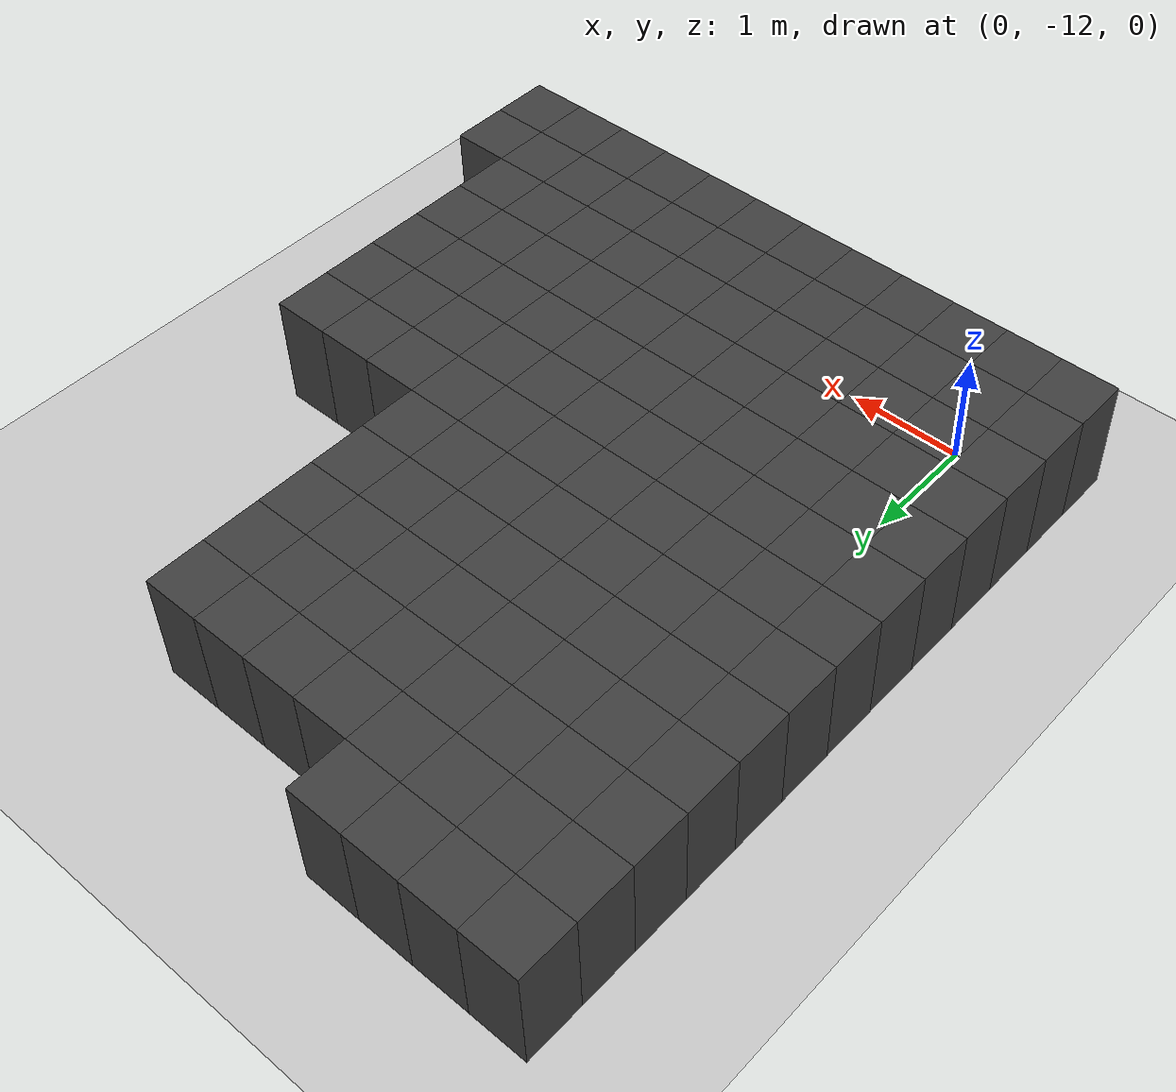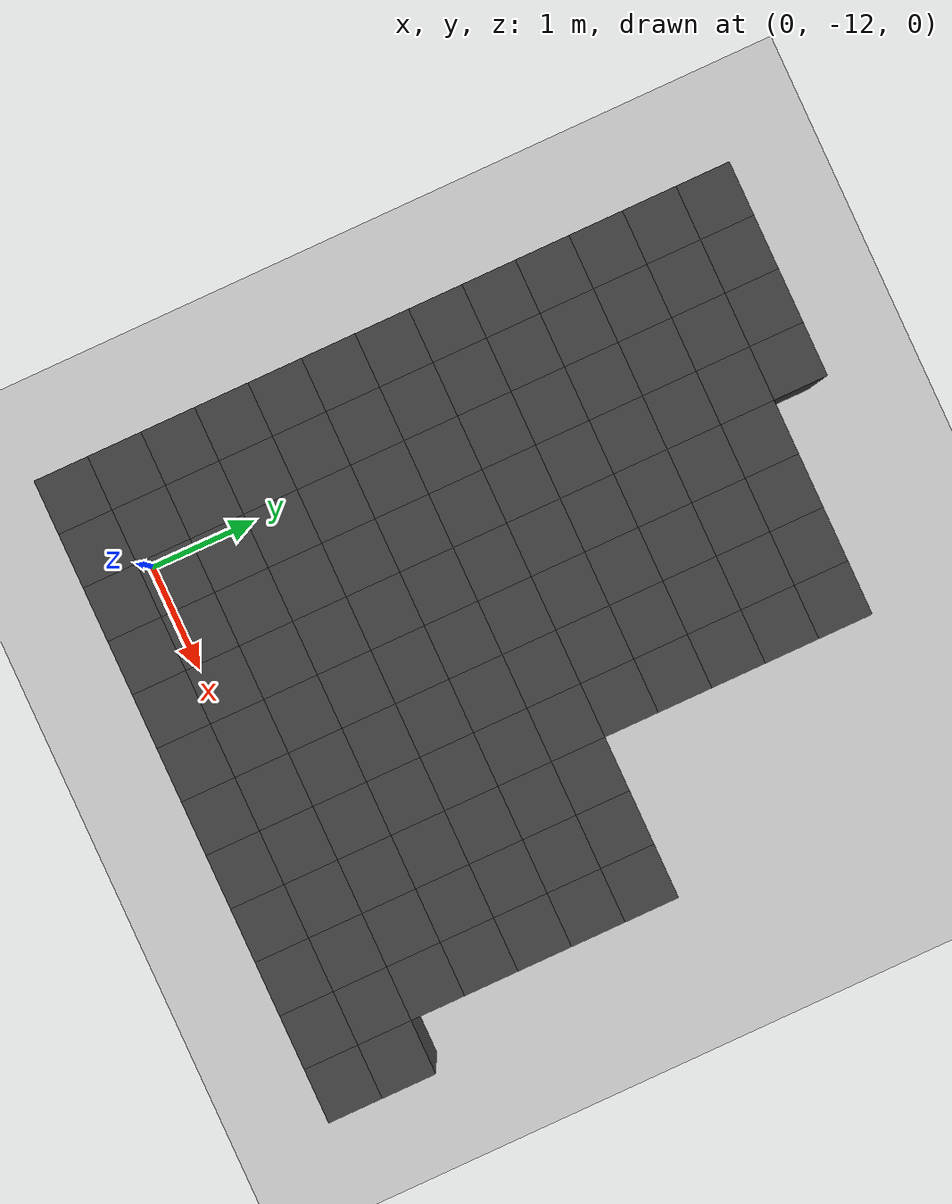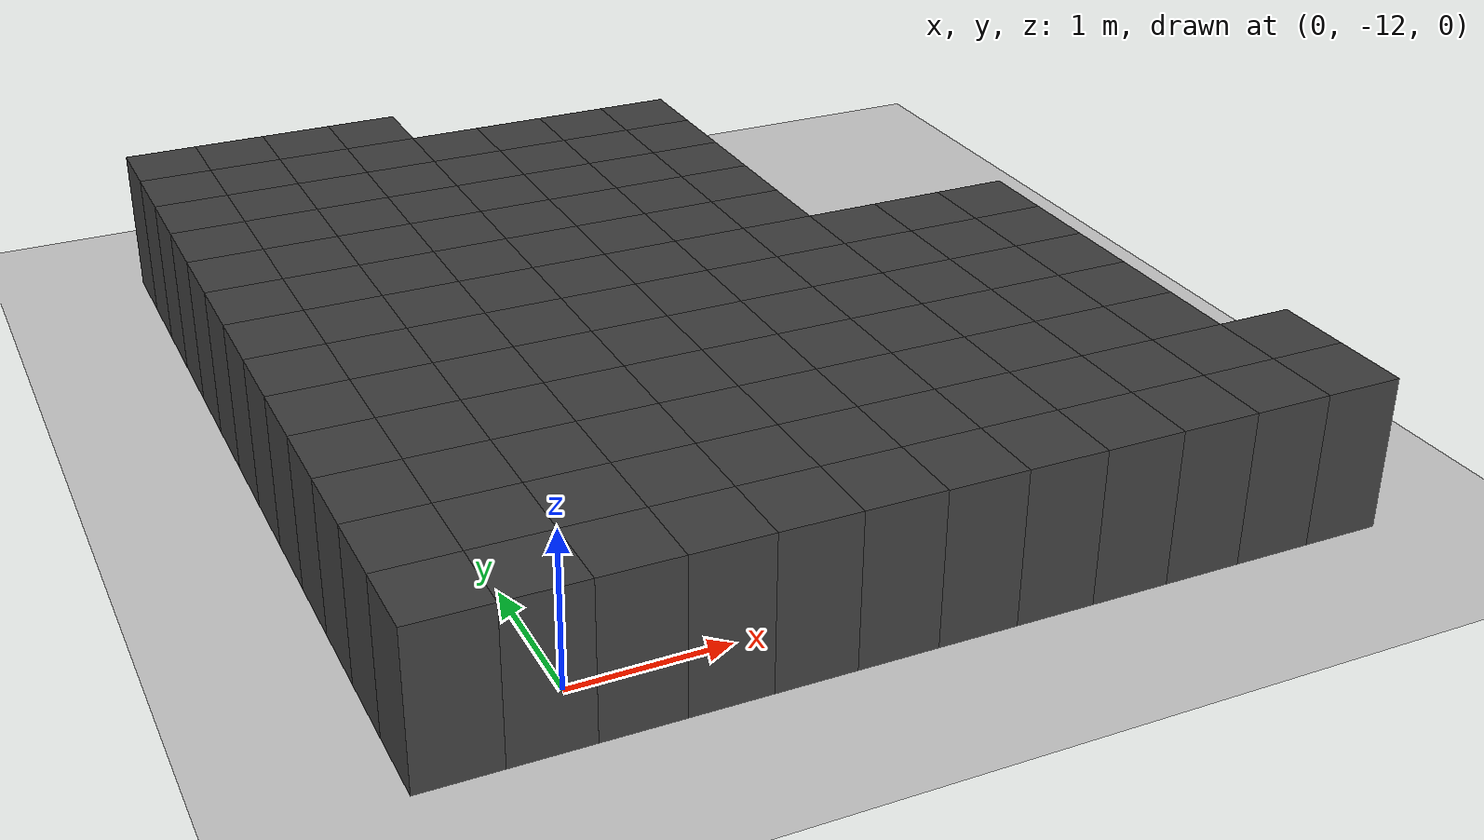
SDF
<sdf version="1.7">
 <world name="map_13364">
  <model name="ground_plane">
   <static>true</static>
   <link name="link">
    <collision name="collision">
     <geometry><plane><normal>0 0 1</normal><size>200 200</size></plane></geometry>
    </collision>
    <visual name="visual">
     <geometry><plane><normal>0 0 1</normal><size>200 200</size></plane></geometry>
     <material><ambient>0.8 0.8 0.8 1</ambient><diffuse>0.8 0.8 0.8 1</diffuse></material>
    </visual>
   </link>
  </model>
  <model name="maze_environment">
   <static>true</static>
   <link name="wall_1348">
    <pose>-0.750 -6.250 0.500 0 0 0</pose>
    <collision name="col"><geometry><box><size>0.5 0.5 1.0</size></box></geometry></collision>
    <visual name="vis">
     <geometry><box><size>0.5 0.5 1.0</size></box></geometry>
     <material><ambient>0.15 0.15 0.15 1</ambient><diffuse>0.25 0.25 0.25 1</diffuse></material>
    </visual>
   </link>
   <link name="wall_1349">
    <pose>-0.250 -6.250 0.500 0 0 0</pose>
    <collision name="col"><geometry><box><size>0.5 0.5 1.0</size></box></geometry></collision>
    <visual name="vis">
     <geometry><box><size>0.5 0.5 1.0</size></box></geometry>
     <material><ambient>0.15 0.15 0.15 1</ambient><diffuse>0.25 0.25 0.25 1</diffuse></material>
    </visual>
   </link>
   <link name="wall_1350">
    <pose>0.250 -6.250 0.500 0 0 0</pose>
    <collision name="col"><geometry><box><size>0.5 0.5 1.0</size></box></geometry></collision>
    <visual name="vis">
     <geometry><box><size>0.5 0.5 1.0</size></box></geometry>
     <material><ambient>0.15 0.15 0.15 1</ambient><diffuse>0.25 0.25 0.25 1</diffuse></material>
    </visual>
   </link>
   <link name="wall_1351">
    <pose>0.750 -6.250 0.500 0 0 0</pose>
    <collision name="col"><geometry><box><size>0.5 0.5 1.0</size></box></geometry></collision>
    <visual name="vis">
     <geometry><box><size>0.5 0.5 1.0</size></box></geometry>
     <material><ambient>0.15 0.15 0.15 1</ambient><diffuse>0.25 0.25 0.25 1</diffuse></material>
    </visual>
   </link>
   <link name="wall_1385">
    <pose>-0.750 -6.750 0.500 0 0 0</pose>
    <collision name="col"><geometry><box><size>0.5 0.5 1.0</size></box></geometry></collision>
    <visual name="vis">
     <geometry><box><size>0.5 0.5 1.0</size></box></geometry>
     <material><ambient>0.15 0.15 0.15 1</ambient><diffuse>0.25 0.25 0.25 1</diffuse></material>
    </visual>
   </link>
   <link name="wall_1386">
    <pose>-0.250 -6.750 0.500 0 0 0</pose>
    <collision name="col"><geometry><box><size>0.5 0.5 1.0</size></box></geometry></collision>
    <visual name="vis">
     <geometry><box><size>0.5 0.5 1.0</size></box></geometry>
     <material><ambient>0.15 0.15 0.15 1</ambient><diffuse>0.25 0.25 0.25 1</diffuse></material>
    </visual>
   </link>
   <link name="wall_1387">
    <pose>0.250 -6.750 0.500 0 0 0</pose>
    <collision name="col"><geometry><box><size>0.5 0.5 1.0</size></box></geometry></collision>
    <visual name="vis">
     <geometry><box><size>0.5 0.5 1.0</size></box></geometry>
     <material><ambient>0.15 0.15 0.15 1</ambient><diffuse>0.25 0.25 0.25 1</diffuse></material>
    </visual>
   </link>
   <link name="wall_1388">
    <pose>0.750 -6.750 0.500 0 0 0</pose>
    <collision name="col"><geometry><box><size>0.5 0.5 1.0</size></box></geometry></collision>
    <visual name="vis">
     <geometry><box><size>0.5 0.5 1.0</size></box></geometry>
     <material><ambient>0.15 0.15 0.15 1</ambient><diffuse>0.25 0.25 0.25 1</diffuse></material>
    </visual>
   </link>
   <link name="wall_1389">
    <pose>1.250 -6.750 0.500 0 0 0</pose>
    <collision name="col"><geometry><box><size>0.5 0.5 1.0</size></box></geometry></collision>
    <visual name="vis">
     <geometry><box><size>0.5 0.5 1.0</size></box></geometry>
     <material><ambient>0.15 0.15 0.15 1</ambient><diffuse>0.25 0.25 0.25 1</diffuse></material>
    </visual>
   </link>
   <link name="wall_1390">
    <pose>1.750 -6.750 0.500 0 0 0</pose>
    <collision name="col"><geometry><box><size>0.5 0.5 1.0</size></box></geometry></collision>
    <visual name="vis">
     <geometry><box><size>0.5 0.5 1.0</size></box></geometry>
     <material><ambient>0.15 0.15 0.15 1</ambient><diffuse>0.25 0.25 0.25 1</diffuse></material>
    </visual>
   </link>
   <link name="wall_1391">
    <pose>2.250 -6.750 0.500 0 0 0</pose>
    <collision name="col"><geometry><box><size>0.5 0.5 1.0</size></box></geometry></collision>
    <visual name="vis">
     <geometry><box><size>0.5 0.5 1.0</size></box></geometry>
     <material><ambient>0.15 0.15 0.15 1</ambient><diffuse>0.25 0.25 0.25 1</diffuse></material>
    </visual>
   </link>
   <link name="wall_1392">
    <pose>2.750 -6.750 0.500 0 0 0</pose>
    <collision name="col"><geometry><box><size>0.5 0.5 1.0</size></box></geometry></collision>
    <visual name="vis">
     <geometry><box><size>0.5 0.5 1.0</size></box></geometry>
     <material><ambient>0.15 0.15 0.15 1</ambient><diffuse>0.25 0.25 0.25 1</diffuse></material>
    </visual>
   </link>
   <link name="wall_1422">
    <pose>-0.750 -7.250 0.500 0 0 0</pose>
    <collision name="col"><geometry><box><size>0.5 0.5 1.0</size></box></geometry></collision>
    <visual name="vis">
     <geometry><box><size>0.5 0.5 1.0</size></box></geometry>
     <material><ambient>0.15 0.15 0.15 1</ambient><diffuse>0.25 0.25 0.25 1</diffuse></material>
    </visual>
   </link>
   <link name="wall_1423">
    <pose>-0.250 -7.250 0.500 0 0 0</pose>
    <collision name="col"><geometry><box><size>0.5 0.5 1.0</size></box></geometry></collision>
    <visual name="vis">
     <geometry><box><size>0.5 0.5 1.0</size></box></geometry>
     <material><ambient>0.15 0.15 0.15 1</ambient><diffuse>0.25 0.25 0.25 1</diffuse></material>
    </visual>
   </link>
   <link name="wall_1424">
    <pose>0.250 -7.250 0.500 0 0 0</pose>
    <collision name="col"><geometry><box><size>0.5 0.5 1.0</size></box></geometry></collision>
    <visual name="vis">
     <geometry><box><size>0.5 0.5 1.0</size></box></geometry>
     <material><ambient>0.15 0.15 0.15 1</ambient><diffuse>0.25 0.25 0.25 1</diffuse></material>
    </visual>
   </link>
   <link name="wall_1425">
    <pose>0.750 -7.250 0.500 0 0 0</pose>
    <collision name="col"><geometry><box><size>0.5 0.5 1.0</size></box></geometry></collision>
    <visual name="vis">
     <geometry><box><size>0.5 0.5 1.0</size></box></geometry>
     <material><ambient>0.15 0.15 0.15 1</ambient><diffuse>0.25 0.25 0.25 1</diffuse></material>
    </visual>
   </link>
   <link name="wall_1426">
    <pose>1.250 -7.250 0.500 0 0 0</pose>
    <collision name="col"><geometry><box><size>0.5 0.5 1.0</size></box></geometry></collision>
    <visual name="vis">
     <geometry><box><size>0.5 0.5 1.0</size></box></geometry>
     <material><ambient>0.15 0.15 0.15 1</ambient><diffuse>0.25 0.25 0.25 1</diffuse></material>
    </visual>
   </link>
   <link name="wall_1427">
    <pose>1.750 -7.250 0.500 0 0 0</pose>
    <collision name="col"><geometry><box><size>0.5 0.5 1.0</size></box></geometry></collision>
    <visual name="vis">
     <geometry><box><size>0.5 0.5 1.0</size></box></geometry>
     <material><ambient>0.15 0.15 0.15 1</ambient><diffuse>0.25 0.25 0.25 1</diffuse></material>
    </visual>
   </link>
   <link name="wall_1428">
    <pose>2.250 -7.250 0.500 0 0 0</pose>
    <collision name="col"><geometry><box><size>0.5 0.5 1.0</size></box></geometry></collision>
    <visual name="vis">
     <geometry><box><size>0.5 0.5 1.0</size></box></geometry>
     <material><ambient>0.15 0.15 0.15 1</ambient><diffuse>0.25 0.25 0.25 1</diffuse></material>
    </visual>
   </link>
   <link name="wall_1429">
    <pose>2.750 -7.250 0.500 0 0 0</pose>
    <collision name="col"><geometry><box><size>0.5 0.5 1.0</size></box></geometry></collision>
    <visual name="vis">
     <geometry><box><size>0.5 0.5 1.0</size></box></geometry>
     <material><ambient>0.15 0.15 0.15 1</ambient><diffuse>0.25 0.25 0.25 1</diffuse></material>
    </visual>
   </link>
   <link name="wall_1459">
    <pose>-0.750 -7.750 0.500 0 0 0</pose>
    <collision name="col"><geometry><box><size>0.5 0.5 1.0</size></box></geometry></collision>
    <visual name="vis">
     <geometry><box><size>0.5 0.5 1.0</size></box></geometry>
     <material><ambient>0.15 0.15 0.15 1</ambient><diffuse>0.25 0.25 0.25 1</diffuse></material>
    </visual>
   </link>
   <link name="wall_1460">
    <pose>-0.250 -7.750 0.500 0 0 0</pose>
    <collision name="col"><geometry><box><size>0.5 0.5 1.0</size></box></geometry></collision>
    <visual name="vis">
     <geometry><box><size>0.5 0.5 1.0</size></box></geometry>
     <material><ambient>0.15 0.15 0.15 1</ambient><diffuse>0.25 0.25 0.25 1</diffuse></material>
    </visual>
   </link>
   <link name="wall_1461">
    <pose>0.250 -7.750 0.500 0 0 0</pose>
    <collision name="col"><geometry><box><size>0.5 0.5 1.0</size></box></geometry></collision>
    <visual name="vis">
     <geometry><box><size>0.5 0.5 1.0</size></box></geometry>
     <material><ambient>0.15 0.15 0.15 1</ambient><diffuse>0.25 0.25 0.25 1</diffuse></material>
    </visual>
   </link>
   <link name="wall_1462">
    <pose>0.750 -7.750 0.500 0 0 0</pose>
    <collision name="col"><geometry><box><size>0.5 0.5 1.0</size></box></geometry></collision>
    <visual name="vis">
     <geometry><box><size>0.5 0.5 1.0</size></box></geometry>
     <material><ambient>0.15 0.15 0.15 1</ambient><diffuse>0.25 0.25 0.25 1</diffuse></material>
    </visual>
   </link>
   <link name="wall_1463">
    <pose>1.250 -7.750 0.500 0 0 0</pose>
    <collision name="col"><geometry><box><size>0.5 0.5 1.0</size></box></geometry></collision>
    <visual name="vis">
     <geometry><box><size>0.5 0.5 1.0</size></box></geometry>
     <material><ambient>0.15 0.15 0.15 1</ambient><diffuse>0.25 0.25 0.25 1</diffuse></material>
    </visual>
   </link>
   <link name="wall_1464">
    <pose>1.750 -7.750 0.500 0 0 0</pose>
    <collision name="col"><geometry><box><size>0.5 0.5 1.0</size></box></geometry></collision>
    <visual name="vis">
     <geometry><box><size>0.5 0.5 1.0</size></box></geometry>
     <material><ambient>0.15 0.15 0.15 1</ambient><diffuse>0.25 0.25 0.25 1</diffuse></material>
    </visual>
   </link>
   <link name="wall_1465">
    <pose>2.250 -7.750 0.500 0 0 0</pose>
    <collision name="col"><geometry><box><size>0.5 0.5 1.0</size></box></geometry></collision>
    <visual name="vis">
     <geometry><box><size>0.5 0.5 1.0</size></box></geometry>
     <material><ambient>0.15 0.15 0.15 1</ambient><diffuse>0.25 0.25 0.25 1</diffuse></material>
    </visual>
   </link>
   <link name="wall_1466">
    <pose>2.750 -7.750 0.500 0 0 0</pose>
    <collision name="col"><geometry><box><size>0.5 0.5 1.0</size></box></geometry></collision>
    <visual name="vis">
     <geometry><box><size>0.5 0.5 1.0</size></box></geometry>
     <material><ambient>0.15 0.15 0.15 1</ambient><diffuse>0.25 0.25 0.25 1</diffuse></material>
    </visual>
   </link>
   <link name="wall_1496">
    <pose>-0.750 -8.250 0.500 0 0 0</pose>
    <collision name="col"><geometry><box><size>0.5 0.5 1.0</size></box></geometry></collision>
    <visual name="vis">
     <geometry><box><size>0.5 0.5 1.0</size></box></geometry>
     <material><ambient>0.15 0.15 0.15 1</ambient><diffuse>0.25 0.25 0.25 1</diffuse></material>
    </visual>
   </link>
   <link name="wall_1497">
    <pose>-0.250 -8.250 0.500 0 0 0</pose>
    <collision name="col"><geometry><box><size>0.5 0.5 1.0</size></box></geometry></collision>
    <visual name="vis">
     <geometry><box><size>0.5 0.5 1.0</size></box></geometry>
     <material><ambient>0.15 0.15 0.15 1</ambient><diffuse>0.25 0.25 0.25 1</diffuse></material>
    </visual>
   </link>
   <link name="wall_1498">
    <pose>0.250 -8.250 0.500 0 0 0</pose>
    <collision name="col"><geometry><box><size>0.5 0.5 1.0</size></box></geometry></collision>
    <visual name="vis">
     <geometry><box><size>0.5 0.5 1.0</size></box></geometry>
     <material><ambient>0.15 0.15 0.15 1</ambient><diffuse>0.25 0.25 0.25 1</diffuse></material>
    </visual>
   </link>
   <link name="wall_1499">
    <pose>0.750 -8.250 0.500 0 0 0</pose>
    <collision name="col"><geometry><box><size>0.5 0.5 1.0</size></box></geometry></collision>
    <visual name="vis">
     <geometry><box><size>0.5 0.5 1.0</size></box></geometry>
     <material><ambient>0.15 0.15 0.15 1</ambient><diffuse>0.25 0.25 0.25 1</diffuse></material>
    </visual>
   </link>
   <link name="wall_1500">
    <pose>1.250 -8.250 0.500 0 0 0</pose>
    <collision name="col"><geometry><box><size>0.5 0.5 1.0</size></box></geometry></collision>
    <visual name="vis">
     <geometry><box><size>0.5 0.5 1.0</size></box></geometry>
     <material><ambient>0.15 0.15 0.15 1</ambient><diffuse>0.25 0.25 0.25 1</diffuse></material>
    </visual>
   </link>
   <link name="wall_1501">
    <pose>1.750 -8.250 0.500 0 0 0</pose>
    <collision name="col"><geometry><box><size>0.5 0.5 1.0</size></box></geometry></collision>
    <visual name="vis">
     <geometry><box><size>0.5 0.5 1.0</size></box></geometry>
     <material><ambient>0.15 0.15 0.15 1</ambient><diffuse>0.25 0.25 0.25 1</diffuse></material>
    </visual>
   </link>
   <link name="wall_1502">
    <pose>2.250 -8.250 0.500 0 0 0</pose>
    <collision name="col"><geometry><box><size>0.5 0.5 1.0</size></box></geometry></collision>
    <visual name="vis">
     <geometry><box><size>0.5 0.5 1.0</size></box></geometry>
     <material><ambient>0.15 0.15 0.15 1</ambient><diffuse>0.25 0.25 0.25 1</diffuse></material>
    </visual>
   </link>
   <link name="wall_1503">
    <pose>2.750 -8.250 0.500 0 0 0</pose>
    <collision name="col"><geometry><box><size>0.5 0.5 1.0</size></box></geometry></collision>
    <visual name="vis">
     <geometry><box><size>0.5 0.5 1.0</size></box></geometry>
     <material><ambient>0.15 0.15 0.15 1</ambient><diffuse>0.25 0.25 0.25 1</diffuse></material>
    </visual>
   </link>
   <link name="wall_1533">
    <pose>-0.750 -8.750 0.500 0 0 0</pose>
    <collision name="col"><geometry><box><size>0.5 0.5 1.0</size></box></geometry></collision>
    <visual name="vis">
     <geometry><box><size>0.5 0.5 1.0</size></box></geometry>
     <material><ambient>0.15 0.15 0.15 1</ambient><diffuse>0.25 0.25 0.25 1</diffuse></material>
    </visual>
   </link>
   <link name="wall_1534">
    <pose>-0.250 -8.750 0.500 0 0 0</pose>
    <collision name="col"><geometry><box><size>0.5 0.5 1.0</size></box></geometry></collision>
    <visual name="vis">
     <geometry><box><size>0.5 0.5 1.0</size></box></geometry>
     <material><ambient>0.15 0.15 0.15 1</ambient><diffuse>0.25 0.25 0.25 1</diffuse></material>
    </visual>
   </link>
   <link name="wall_1535">
    <pose>0.250 -8.750 0.500 0 0 0</pose>
    <collision name="col"><geometry><box><size>0.5 0.5 1.0</size></box></geometry></collision>
    <visual name="vis">
     <geometry><box><size>0.5 0.5 1.0</size></box></geometry>
     <material><ambient>0.15 0.15 0.15 1</ambient><diffuse>0.25 0.25 0.25 1</diffuse></material>
    </visual>
   </link>
   <link name="wall_1536">
    <pose>0.750 -8.750 0.500 0 0 0</pose>
    <collision name="col"><geometry><box><size>0.5 0.5 1.0</size></box></geometry></collision>
    <visual name="vis">
     <geometry><box><size>0.5 0.5 1.0</size></box></geometry>
     <material><ambient>0.15 0.15 0.15 1</ambient><diffuse>0.25 0.25 0.25 1</diffuse></material>
    </visual>
   </link>
   <link name="wall_1537">
    <pose>1.250 -8.750 0.500 0 0 0</pose>
    <collision name="col"><geometry><box><size>0.5 0.5 1.0</size></box></geometry></collision>
    <visual name="vis">
     <geometry><box><size>0.5 0.5 1.0</size></box></geometry>
     <material><ambient>0.15 0.15 0.15 1</ambient><diffuse>0.25 0.25 0.25 1</diffuse></material>
    </visual>
   </link>
   <link name="wall_1538">
    <pose>1.750 -8.750 0.500 0 0 0</pose>
    <collision name="col"><geometry><box><size>0.5 0.5 1.0</size></box></geometry></collision>
    <visual name="vis">
     <geometry><box><size>0.5 0.5 1.0</size></box></geometry>
     <material><ambient>0.15 0.15 0.15 1</ambient><diffuse>0.25 0.25 0.25 1</diffuse></material>
    </visual>
   </link>
   <link name="wall_1539">
    <pose>2.250 -8.750 0.500 0 0 0</pose>
    <collision name="col"><geometry><box><size>0.5 0.5 1.0</size></box></geometry></collision>
    <visual name="vis">
     <geometry><box><size>0.5 0.5 1.0</size></box></geometry>
     <material><ambient>0.15 0.15 0.15 1</ambient><diffuse>0.25 0.25 0.25 1</diffuse></material>
    </visual>
   </link>
   <link name="wall_1540">
    <pose>2.750 -8.750 0.500 0 0 0</pose>
    <collision name="col"><geometry><box><size>0.5 0.5 1.0</size></box></geometry></collision>
    <visual name="vis">
     <geometry><box><size>0.5 0.5 1.0</size></box></geometry>
     <material><ambient>0.15 0.15 0.15 1</ambient><diffuse>0.25 0.25 0.25 1</diffuse></material>
    </visual>
   </link>
   <link name="wall_1570">
    <pose>-0.750 -9.250 0.500 0 0 0</pose>
    <collision name="col"><geometry><box><size>0.5 0.5 1.0</size></box></geometry></collision>
    <visual name="vis">
     <geometry><box><size>0.5 0.5 1.0</size></box></geometry>
     <material><ambient>0.15 0.15 0.15 1</ambient><diffuse>0.25 0.25 0.25 1</diffuse></material>
    </visual>
   </link>
   <link name="wall_1571">
    <pose>-0.250 -9.250 0.500 0 0 0</pose>
    <collision name="col"><geometry><box><size>0.5 0.5 1.0</size></box></geometry></collision>
    <visual name="vis">
     <geometry><box><size>0.5 0.5 1.0</size></box></geometry>
     <material><ambient>0.15 0.15 0.15 1</ambient><diffuse>0.25 0.25 0.25 1</diffuse></material>
    </visual>
   </link>
   <link name="wall_1572">
    <pose>0.250 -9.250 0.500 0 0 0</pose>
    <collision name="col"><geometry><box><size>0.5 0.5 1.0</size></box></geometry></collision>
    <visual name="vis">
     <geometry><box><size>0.5 0.5 1.0</size></box></geometry>
     <material><ambient>0.15 0.15 0.15 1</ambient><diffuse>0.25 0.25 0.25 1</diffuse></material>
    </visual>
   </link>
   <link name="wall_1573">
    <pose>0.750 -9.250 0.500 0 0 0</pose>
    <collision name="col"><geometry><box><size>0.5 0.5 1.0</size></box></geometry></collision>
    <visual name="vis">
     <geometry><box><size>0.5 0.5 1.0</size></box></geometry>
     <material><ambient>0.15 0.15 0.15 1</ambient><diffuse>0.25 0.25 0.25 1</diffuse></material>
    </visual>
   </link>
   <link name="wall_1574">
    <pose>1.250 -9.250 0.500 0 0 0</pose>
    <collision name="col"><geometry><box><size>0.5 0.5 1.0</size></box></geometry></collision>
    <visual name="vis">
     <geometry><box><size>0.5 0.5 1.0</size></box></geometry>
     <material><ambient>0.15 0.15 0.15 1</ambient><diffuse>0.25 0.25 0.25 1</diffuse></material>
    </visual>
   </link>
   <link name="wall_1575">
    <pose>1.750 -9.250 0.500 0 0 0</pose>
    <collision name="col"><geometry><box><size>0.5 0.5 1.0</size></box></geometry></collision>
    <visual name="vis">
     <geometry><box><size>0.5 0.5 1.0</size></box></geometry>
     <material><ambient>0.15 0.15 0.15 1</ambient><diffuse>0.25 0.25 0.25 1</diffuse></material>
    </visual>
   </link>
   <link name="wall_1576">
    <pose>2.250 -9.250 0.500 0 0 0</pose>
    <collision name="col"><geometry><box><size>0.5 0.5 1.0</size></box></geometry></collision>
    <visual name="vis">
     <geometry><box><size>0.5 0.5 1.0</size></box></geometry>
     <material><ambient>0.15 0.15 0.15 1</ambient><diffuse>0.25 0.25 0.25 1</diffuse></material>
    </visual>
   </link>
   <link name="wall_1577">
    <pose>2.750 -9.250 0.500 0 0 0</pose>
    <collision name="col"><geometry><box><size>0.5 0.5 1.0</size></box></geometry></collision>
    <visual name="vis">
     <geometry><box><size>0.5 0.5 1.0</size></box></geometry>
     <material><ambient>0.15 0.15 0.15 1</ambient><diffuse>0.25 0.25 0.25 1</diffuse></material>
    </visual>
   </link>
   <link name="wall_1578">
    <pose>3.250 -9.250 0.500 0 0 0</pose>
    <collision name="col"><geometry><box><size>0.5 0.5 1.0</size></box></geometry></collision>
    <visual name="vis">
     <geometry><box><size>0.5 0.5 1.0</size></box></geometry>
     <material><ambient>0.15 0.15 0.15 1</ambient><diffuse>0.25 0.25 0.25 1</diffuse></material>
    </visual>
   </link>
   <link name="wall_1579">
    <pose>3.750 -9.250 0.500 0 0 0</pose>
    <collision name="col"><geometry><box><size>0.5 0.5 1.0</size></box></geometry></collision>
    <visual name="vis">
     <geometry><box><size>0.5 0.5 1.0</size></box></geometry>
     <material><ambient>0.15 0.15 0.15 1</ambient><diffuse>0.25 0.25 0.25 1</diffuse></material>
    </visual>
   </link>
   <link name="wall_1580">
    <pose>4.250 -9.250 0.500 0 0 0</pose>
    <collision name="col"><geometry><box><size>0.5 0.5 1.0</size></box></geometry></collision>
    <visual name="vis">
     <geometry><box><size>0.5 0.5 1.0</size></box></geometry>
     <material><ambient>0.15 0.15 0.15 1</ambient><diffuse>0.25 0.25 0.25 1</diffuse></material>
    </visual>
   </link>
   <link name="wall_1613">
    <pose>-0.750 -9.750 0.500 0 0 0</pose>
    <collision name="col"><geometry><box><size>0.5 0.5 1.0</size></box></geometry></collision>
    <visual name="vis">
     <geometry><box><size>0.5 0.5 1.0</size></box></geometry>
     <material><ambient>0.15 0.15 0.15 1</ambient><diffuse>0.25 0.25 0.25 1</diffuse></material>
    </visual>
   </link>
   <link name="wall_1614">
    <pose>-0.250 -9.750 0.500 0 0 0</pose>
    <collision name="col"><geometry><box><size>0.5 0.5 1.0</size></box></geometry></collision>
    <visual name="vis">
     <geometry><box><size>0.5 0.5 1.0</size></box></geometry>
     <material><ambient>0.15 0.15 0.15 1</ambient><diffuse>0.25 0.25 0.25 1</diffuse></material>
    </visual>
   </link>
   <link name="wall_1615">
    <pose>0.250 -9.750 0.500 0 0 0</pose>
    <collision name="col"><geometry><box><size>0.5 0.5 1.0</size></box></geometry></collision>
    <visual name="vis">
     <geometry><box><size>0.5 0.5 1.0</size></box></geometry>
     <material><ambient>0.15 0.15 0.15 1</ambient><diffuse>0.25 0.25 0.25 1</diffuse></material>
    </visual>
   </link>
   <link name="wall_1616">
    <pose>0.750 -9.750 0.500 0 0 0</pose>
    <collision name="col"><geometry><box><size>0.5 0.5 1.0</size></box></geometry></collision>
    <visual name="vis">
     <geometry><box><size>0.5 0.5 1.0</size></box></geometry>
     <material><ambient>0.15 0.15 0.15 1</ambient><diffuse>0.25 0.25 0.25 1</diffuse></material>
    </visual>
   </link>
   <link name="wall_1617">
    <pose>1.250 -9.750 0.500 0 0 0</pose>
    <collision name="col"><geometry><box><size>0.5 0.5 1.0</size></box></geometry></collision>
    <visual name="vis">
     <geometry><box><size>0.5 0.5 1.0</size></box></geometry>
     <material><ambient>0.15 0.15 0.15 1</ambient><diffuse>0.25 0.25 0.25 1</diffuse></material>
    </visual>
   </link>
   <link name="wall_1618">
    <pose>1.750 -9.750 0.500 0 0 0</pose>
    <collision name="col"><geometry><box><size>0.5 0.5 1.0</size></box></geometry></collision>
    <visual name="vis">
     <geometry><box><size>0.5 0.5 1.0</size></box></geometry>
     <material><ambient>0.15 0.15 0.15 1</ambient><diffuse>0.25 0.25 0.25 1</diffuse></material>
    </visual>
   </link>
   <link name="wall_1619">
    <pose>2.250 -9.750 0.500 0 0 0</pose>
    <collision name="col"><geometry><box><size>0.5 0.5 1.0</size></box></geometry></collision>
    <visual name="vis">
     <geometry><box><size>0.5 0.5 1.0</size></box></geometry>
     <material><ambient>0.15 0.15 0.15 1</ambient><diffuse>0.25 0.25 0.25 1</diffuse></material>
    </visual>
   </link>
   <link name="wall_1620">
    <pose>2.750 -9.750 0.500 0 0 0</pose>
    <collision name="col"><geometry><box><size>0.5 0.5 1.0</size></box></geometry></collision>
    <visual name="vis">
     <geometry><box><size>0.5 0.5 1.0</size></box></geometry>
     <material><ambient>0.15 0.15 0.15 1</ambient><diffuse>0.25 0.25 0.25 1</diffuse></material>
    </visual>
   </link>
   <link name="wall_1621">
    <pose>3.250 -9.750 0.500 0 0 0</pose>
    <collision name="col"><geometry><box><size>0.5 0.5 1.0</size></box></geometry></collision>
    <visual name="vis">
     <geometry><box><size>0.5 0.5 1.0</size></box></geometry>
     <material><ambient>0.15 0.15 0.15 1</ambient><diffuse>0.25 0.25 0.25 1</diffuse></material>
    </visual>
   </link>
   <link name="wall_1622">
    <pose>3.750 -9.750 0.500 0 0 0</pose>
    <collision name="col"><geometry><box><size>0.5 0.5 1.0</size></box></geometry></collision>
    <visual name="vis">
     <geometry><box><size>0.5 0.5 1.0</size></box></geometry>
     <material><ambient>0.15 0.15 0.15 1</ambient><diffuse>0.25 0.25 0.25 1</diffuse></material>
    </visual>
   </link>
   <link name="wall_1623">
    <pose>4.250 -9.750 0.500 0 0 0</pose>
    <collision name="col"><geometry><box><size>0.5 0.5 1.0</size></box></geometry></collision>
    <visual name="vis">
     <geometry><box><size>0.5 0.5 1.0</size></box></geometry>
     <material><ambient>0.15 0.15 0.15 1</ambient><diffuse>0.25 0.25 0.25 1</diffuse></material>
    </visual>
   </link>
   <link name="wall_1656">
    <pose>-0.750 -10.250 0.500 0 0 0</pose>
    <collision name="col"><geometry><box><size>0.5 0.5 1.0</size></box></geometry></collision>
    <visual name="vis">
     <geometry><box><size>0.5 0.5 1.0</size></box></geometry>
     <material><ambient>0.15 0.15 0.15 1</ambient><diffuse>0.25 0.25 0.25 1</diffuse></material>
    </visual>
   </link>
   <link name="wall_1657">
    <pose>-0.250 -10.250 0.500 0 0 0</pose>
    <collision name="col"><geometry><box><size>0.5 0.5 1.0</size></box></geometry></collision>
    <visual name="vis">
     <geometry><box><size>0.5 0.5 1.0</size></box></geometry>
     <material><ambient>0.15 0.15 0.15 1</ambient><diffuse>0.25 0.25 0.25 1</diffuse></material>
    </visual>
   </link>
   <link name="wall_1658">
    <pose>0.250 -10.250 0.500 0 0 0</pose>
    <collision name="col"><geometry><box><size>0.5 0.5 1.0</size></box></geometry></collision>
    <visual name="vis">
     <geometry><box><size>0.5 0.5 1.0</size></box></geometry>
     <material><ambient>0.15 0.15 0.15 1</ambient><diffuse>0.25 0.25 0.25 1</diffuse></material>
    </visual>
   </link>
   <link name="wall_1659">
    <pose>0.750 -10.250 0.500 0 0 0</pose>
    <collision name="col"><geometry><box><size>0.5 0.5 1.0</size></box></geometry></collision>
    <visual name="vis">
     <geometry><box><size>0.5 0.5 1.0</size></box></geometry>
     <material><ambient>0.15 0.15 0.15 1</ambient><diffuse>0.25 0.25 0.25 1</diffuse></material>
    </visual>
   </link>
   <link name="wall_1660">
    <pose>1.250 -10.250 0.500 0 0 0</pose>
    <collision name="col"><geometry><box><size>0.5 0.5 1.0</size></box></geometry></collision>
    <visual name="vis">
     <geometry><box><size>0.5 0.5 1.0</size></box></geometry>
     <material><ambient>0.15 0.15 0.15 1</ambient><diffuse>0.25 0.25 0.25 1</diffuse></material>
    </visual>
   </link>
   <link name="wall_1661">
    <pose>1.750 -10.250 0.500 0 0 0</pose>
    <collision name="col"><geometry><box><size>0.5 0.5 1.0</size></box></geometry></collision>
    <visual name="vis">
     <geometry><box><size>0.5 0.5 1.0</size></box></geometry>
     <material><ambient>0.15 0.15 0.15 1</ambient><diffuse>0.25 0.25 0.25 1</diffuse></material>
    </visual>
   </link>
   <link name="wall_1662">
    <pose>2.250 -10.250 0.500 0 0 0</pose>
    <collision name="col"><geometry><box><size>0.5 0.5 1.0</size></box></geometry></collision>
    <visual name="vis">
     <geometry><box><size>0.5 0.5 1.0</size></box></geometry>
     <material><ambient>0.15 0.15 0.15 1</ambient><diffuse>0.25 0.25 0.25 1</diffuse></material>
    </visual>
   </link>
   <link name="wall_1663">
    <pose>2.750 -10.250 0.500 0 0 0</pose>
    <collision name="col"><geometry><box><size>0.5 0.5 1.0</size></box></geometry></collision>
    <visual name="vis">
     <geometry><box><size>0.5 0.5 1.0</size></box></geometry>
     <material><ambient>0.15 0.15 0.15 1</ambient><diffuse>0.25 0.25 0.25 1</diffuse></material>
    </visual>
   </link>
   <link name="wall_1664">
    <pose>3.250 -10.250 0.500 0 0 0</pose>
    <collision name="col"><geometry><box><size>0.5 0.5 1.0</size></box></geometry></collision>
    <visual name="vis">
     <geometry><box><size>0.5 0.5 1.0</size></box></geometry>
     <material><ambient>0.15 0.15 0.15 1</ambient><diffuse>0.25 0.25 0.25 1</diffuse></material>
    </visual>
   </link>
   <link name="wall_1665">
    <pose>3.750 -10.250 0.500 0 0 0</pose>
    <collision name="col"><geometry><box><size>0.5 0.5 1.0</size></box></geometry></collision>
    <visual name="vis">
     <geometry><box><size>0.5 0.5 1.0</size></box></geometry>
     <material><ambient>0.15 0.15 0.15 1</ambient><diffuse>0.25 0.25 0.25 1</diffuse></material>
    </visual>
   </link>
   <link name="wall_1666">
    <pose>4.250 -10.250 0.500 0 0 0</pose>
    <collision name="col"><geometry><box><size>0.5 0.5 1.0</size></box></geometry></collision>
    <visual name="vis">
     <geometry><box><size>0.5 0.5 1.0</size></box></geometry>
     <material><ambient>0.15 0.15 0.15 1</ambient><diffuse>0.25 0.25 0.25 1</diffuse></material>
    </visual>
   </link>
   <link name="wall_1699">
    <pose>-0.750 -10.750 0.500 0 0 0</pose>
    <collision name="col"><geometry><box><size>0.5 0.5 1.0</size></box></geometry></collision>
    <visual name="vis">
     <geometry><box><size>0.5 0.5 1.0</size></box></geometry>
     <material><ambient>0.15 0.15 0.15 1</ambient><diffuse>0.25 0.25 0.25 1</diffuse></material>
    </visual>
   </link>
   <link name="wall_1700">
    <pose>-0.250 -10.750 0.500 0 0 0</pose>
    <collision name="col"><geometry><box><size>0.5 0.5 1.0</size></box></geometry></collision>
    <visual name="vis">
     <geometry><box><size>0.5 0.5 1.0</size></box></geometry>
     <material><ambient>0.15 0.15 0.15 1</ambient><diffuse>0.25 0.25 0.25 1</diffuse></material>
    </visual>
   </link>
   <link name="wall_1701">
    <pose>0.250 -10.750 0.500 0 0 0</pose>
    <collision name="col"><geometry><box><size>0.5 0.5 1.0</size></box></geometry></collision>
    <visual name="vis">
     <geometry><box><size>0.5 0.5 1.0</size></box></geometry>
     <material><ambient>0.15 0.15 0.15 1</ambient><diffuse>0.25 0.25 0.25 1</diffuse></material>
    </visual>
   </link>
   <link name="wall_1702">
    <pose>0.750 -10.750 0.500 0 0 0</pose>
    <collision name="col"><geometry><box><size>0.5 0.5 1.0</size></box></geometry></collision>
    <visual name="vis">
     <geometry><box><size>0.5 0.5 1.0</size></box></geometry>
     <material><ambient>0.15 0.15 0.15 1</ambient><diffuse>0.25 0.25 0.25 1</diffuse></material>
    </visual>
   </link>
   <link name="wall_1703">
    <pose>1.250 -10.750 0.500 0 0 0</pose>
    <collision name="col"><geometry><box><size>0.5 0.5 1.0</size></box></geometry></collision>
    <visual name="vis">
     <geometry><box><size>0.5 0.5 1.0</size></box></geometry>
     <material><ambient>0.15 0.15 0.15 1</ambient><diffuse>0.25 0.25 0.25 1</diffuse></material>
    </visual>
   </link>
   <link name="wall_1704">
    <pose>1.750 -10.750 0.500 0 0 0</pose>
    <collision name="col"><geometry><box><size>0.5 0.5 1.0</size></box></geometry></collision>
    <visual name="vis">
     <geometry><box><size>0.5 0.5 1.0</size></box></geometry>
     <material><ambient>0.15 0.15 0.15 1</ambient><diffuse>0.25 0.25 0.25 1</diffuse></material>
    </visual>
   </link>
   <link name="wall_1705">
    <pose>2.250 -10.750 0.500 0 0 0</pose>
    <collision name="col"><geometry><box><size>0.5 0.5 1.0</size></box></geometry></collision>
    <visual name="vis">
     <geometry><box><size>0.5 0.5 1.0</size></box></geometry>
     <material><ambient>0.15 0.15 0.15 1</ambient><diffuse>0.25 0.25 0.25 1</diffuse></material>
    </visual>
   </link>
   <link name="wall_1706">
    <pose>2.750 -10.750 0.500 0 0 0</pose>
    <collision name="col"><geometry><box><size>0.5 0.5 1.0</size></box></geometry></collision>
    <visual name="vis">
     <geometry><box><size>0.5 0.5 1.0</size></box></geometry>
     <material><ambient>0.15 0.15 0.15 1</ambient><diffuse>0.25 0.25 0.25 1</diffuse></material>
    </visual>
   </link>
   <link name="wall_1707">
    <pose>3.250 -10.750 0.500 0 0 0</pose>
    <collision name="col"><geometry><box><size>0.5 0.5 1.0</size></box></geometry></collision>
    <visual name="vis">
     <geometry><box><size>0.5 0.5 1.0</size></box></geometry>
     <material><ambient>0.15 0.15 0.15 1</ambient><diffuse>0.25 0.25 0.25 1</diffuse></material>
    </visual>
   </link>
   <link name="wall_1708">
    <pose>3.750 -10.750 0.500 0 0 0</pose>
    <collision name="col"><geometry><box><size>0.5 0.5 1.0</size></box></geometry></collision>
    <visual name="vis">
     <geometry><box><size>0.5 0.5 1.0</size></box></geometry>
     <material><ambient>0.15 0.15 0.15 1</ambient><diffuse>0.25 0.25 0.25 1</diffuse></material>
    </visual>
   </link>
   <link name="wall_1709">
    <pose>4.250 -10.750 0.500 0 0 0</pose>
    <collision name="col"><geometry><box><size>0.5 0.5 1.0</size></box></geometry></collision>
    <visual name="vis">
     <geometry><box><size>0.5 0.5 1.0</size></box></geometry>
     <material><ambient>0.15 0.15 0.15 1</ambient><diffuse>0.25 0.25 0.25 1</diffuse></material>
    </visual>
   </link>
   <link name="wall_1745">
    <pose>-0.750 -11.250 0.500 0 0 0</pose>
    <collision name="col"><geometry><box><size>0.5 0.5 1.0</size></box></geometry></collision>
    <visual name="vis">
     <geometry><box><size>0.5 0.5 1.0</size></box></geometry>
     <material><ambient>0.15 0.15 0.15 1</ambient><diffuse>0.25 0.25 0.25 1</diffuse></material>
    </visual>
   </link>
   <link name="wall_1746">
    <pose>-0.250 -11.250 0.500 0 0 0</pose>
    <collision name="col"><geometry><box><size>0.5 0.5 1.0</size></box></geometry></collision>
    <visual name="vis">
     <geometry><box><size>0.5 0.5 1.0</size></box></geometry>
     <material><ambient>0.15 0.15 0.15 1</ambient><diffuse>0.25 0.25 0.25 1</diffuse></material>
    </visual>
   </link>
   <link name="wall_1747">
    <pose>0.250 -11.250 0.500 0 0 0</pose>
    <collision name="col"><geometry><box><size>0.5 0.5 1.0</size></box></geometry></collision>
    <visual name="vis">
     <geometry><box><size>0.5 0.5 1.0</size></box></geometry>
     <material><ambient>0.15 0.15 0.15 1</ambient><diffuse>0.25 0.25 0.25 1</diffuse></material>
    </visual>
   </link>
   <link name="wall_1748">
    <pose>0.750 -11.250 0.500 0 0 0</pose>
    <collision name="col"><geometry><box><size>0.5 0.5 1.0</size></box></geometry></collision>
    <visual name="vis">
     <geometry><box><size>0.5 0.5 1.0</size></box></geometry>
     <material><ambient>0.15 0.15 0.15 1</ambient><diffuse>0.25 0.25 0.25 1</diffuse></material>
    </visual>
   </link>
   <link name="wall_1749">
    <pose>1.250 -11.250 0.500 0 0 0</pose>
    <collision name="col"><geometry><box><size>0.5 0.5 1.0</size></box></geometry></collision>
    <visual name="vis">
     <geometry><box><size>0.5 0.5 1.0</size></box></geometry>
     <material><ambient>0.15 0.15 0.15 1</ambient><diffuse>0.25 0.25 0.25 1</diffuse></material>
    </visual>
   </link>
   <link name="wall_1750">
    <pose>1.750 -11.250 0.500 0 0 0</pose>
    <collision name="col"><geometry><box><size>0.5 0.5 1.0</size></box></geometry></collision>
    <visual name="vis">
     <geometry><box><size>0.5 0.5 1.0</size></box></geometry>
     <material><ambient>0.15 0.15 0.15 1</ambient><diffuse>0.25 0.25 0.25 1</diffuse></material>
    </visual>
   </link>
   <link name="wall_1751">
    <pose>2.250 -11.250 0.500 0 0 0</pose>
    <collision name="col"><geometry><box><size>0.5 0.5 1.0</size></box></geometry></collision>
    <visual name="vis">
     <geometry><box><size>0.5 0.5 1.0</size></box></geometry>
     <material><ambient>0.15 0.15 0.15 1</ambient><diffuse>0.25 0.25 0.25 1</diffuse></material>
    </visual>
   </link>
   <link name="wall_1752">
    <pose>2.750 -11.250 0.500 0 0 0</pose>
    <collision name="col"><geometry><box><size>0.5 0.5 1.0</size></box></geometry></collision>
    <visual name="vis">
     <geometry><box><size>0.5 0.5 1.0</size></box></geometry>
     <material><ambient>0.15 0.15 0.15 1</ambient><diffuse>0.25 0.25 0.25 1</diffuse></material>
    </visual>
   </link>
   <link name="wall_1753">
    <pose>3.250 -11.250 0.500 0 0 0</pose>
    <collision name="col"><geometry><box><size>0.5 0.5 1.0</size></box></geometry></collision>
    <visual name="vis">
     <geometry><box><size>0.5 0.5 1.0</size></box></geometry>
     <material><ambient>0.15 0.15 0.15 1</ambient><diffuse>0.25 0.25 0.25 1</diffuse></material>
    </visual>
   </link>
   <link name="wall_1754">
    <pose>3.750 -11.250 0.500 0 0 0</pose>
    <collision name="col"><geometry><box><size>0.5 0.5 1.0</size></box></geometry></collision>
    <visual name="vis">
     <geometry><box><size>0.5 0.5 1.0</size></box></geometry>
     <material><ambient>0.15 0.15 0.15 1</ambient><diffuse>0.25 0.25 0.25 1</diffuse></material>
    </visual>
   </link>
   <link name="wall_1755">
    <pose>4.250 -11.250 0.500 0 0 0</pose>
    <collision name="col"><geometry><box><size>0.5 0.5 1.0</size></box></geometry></collision>
    <visual name="vis">
     <geometry><box><size>0.5 0.5 1.0</size></box></geometry>
     <material><ambient>0.15 0.15 0.15 1</ambient><diffuse>0.25 0.25 0.25 1</diffuse></material>
    </visual>
   </link>
   <link name="wall_1780">
    <pose>-0.750 -11.750 0.500 0 0 0</pose>
    <collision name="col"><geometry><box><size>0.5 0.5 1.0</size></box></geometry></collision>
    <visual name="vis">
     <geometry><box><size>0.5 0.5 1.0</size></box></geometry>
     <material><ambient>0.15 0.15 0.15 1</ambient><diffuse>0.25 0.25 0.25 1</diffuse></material>
    </visual>
   </link>
   <link name="wall_1781">
    <pose>-0.250 -11.750 0.500 0 0 0</pose>
    <collision name="col"><geometry><box><size>0.5 0.5 1.0</size></box></geometry></collision>
    <visual name="vis">
     <geometry><box><size>0.5 0.5 1.0</size></box></geometry>
     <material><ambient>0.15 0.15 0.15 1</ambient><diffuse>0.25 0.25 0.25 1</diffuse></material>
    </visual>
   </link>
   <link name="wall_1782">
    <pose>0.250 -11.750 0.500 0 0 0</pose>
    <collision name="col"><geometry><box><size>0.5 0.5 1.0</size></box></geometry></collision>
    <visual name="vis">
     <geometry><box><size>0.5 0.5 1.0</size></box></geometry>
     <material><ambient>0.15 0.15 0.15 1</ambient><diffuse>0.25 0.25 0.25 1</diffuse></material>
    </visual>
   </link>
   <link name="wall_1783">
    <pose>0.750 -11.750 0.500 0 0 0</pose>
    <collision name="col"><geometry><box><size>0.5 0.5 1.0</size></box></geometry></collision>
    <visual name="vis">
     <geometry><box><size>0.5 0.5 1.0</size></box></geometry>
     <material><ambient>0.15 0.15 0.15 1</ambient><diffuse>0.25 0.25 0.25 1</diffuse></material>
    </visual>
   </link>
   <link name="wall_1784">
    <pose>1.250 -11.750 0.500 0 0 0</pose>
    <collision name="col"><geometry><box><size>0.5 0.5 1.0</size></box></geometry></collision>
    <visual name="vis">
     <geometry><box><size>0.5 0.5 1.0</size></box></geometry>
     <material><ambient>0.15 0.15 0.15 1</ambient><diffuse>0.25 0.25 0.25 1</diffuse></material>
    </visual>
   </link>
   <link name="wall_1785">
    <pose>1.750 -11.750 0.500 0 0 0</pose>
    <collision name="col"><geometry><box><size>0.5 0.5 1.0</size></box></geometry></collision>
    <visual name="vis">
     <geometry><box><size>0.5 0.5 1.0</size></box></geometry>
     <material><ambient>0.15 0.15 0.15 1</ambient><diffuse>0.25 0.25 0.25 1</diffuse></material>
    </visual>
   </link>
   <link name="wall_1786">
    <pose>2.250 -11.750 0.500 0 0 0</pose>
    <collision name="col"><geometry><box><size>0.5 0.5 1.0</size></box></geometry></collision>
    <visual name="vis">
     <geometry><box><size>0.5 0.5 1.0</size></box></geometry>
     <material><ambient>0.15 0.15 0.15 1</ambient><diffuse>0.25 0.25 0.25 1</diffuse></material>
    </visual>
   </link>
   <link name="wall_1787">
    <pose>2.750 -11.750 0.500 0 0 0</pose>
    <collision name="col"><geometry><box><size>0.5 0.5 1.0</size></box></geometry></collision>
    <visual name="vis">
     <geometry><box><size>0.5 0.5 1.0</size></box></geometry>
     <material><ambient>0.15 0.15 0.15 1</ambient><diffuse>0.25 0.25 0.25 1</diffuse></material>
    </visual>
   </link>
   <link name="wall_1788">
    <pose>3.250 -11.750 0.500 0 0 0</pose>
    <collision name="col"><geometry><box><size>0.5 0.5 1.0</size></box></geometry></collision>
    <visual name="vis">
     <geometry><box><size>0.5 0.5 1.0</size></box></geometry>
     <material><ambient>0.15 0.15 0.15 1</ambient><diffuse>0.25 0.25 0.25 1</diffuse></material>
    </visual>
   </link>
   <link name="wall_1789">
    <pose>3.750 -11.750 0.500 0 0 0</pose>
    <collision name="col"><geometry><box><size>0.5 0.5 1.0</size></box></geometry></collision>
    <visual name="vis">
     <geometry><box><size>0.5 0.5 1.0</size></box></geometry>
     <material><ambient>0.15 0.15 0.15 1</ambient><diffuse>0.25 0.25 0.25 1</diffuse></material>
    </visual>
   </link>
   <link name="wall_1790">
    <pose>4.250 -11.750 0.500 0 0 0</pose>
    <collision name="col"><geometry><box><size>0.5 0.5 1.0</size></box></geometry></collision>
    <visual name="vis">
     <geometry><box><size>0.5 0.5 1.0</size></box></geometry>
     <material><ambient>0.15 0.15 0.15 1</ambient><diffuse>0.25 0.25 0.25 1</diffuse></material>
    </visual>
   </link>
   <link name="wall_1791">
    <pose>4.750 -11.750 0.500 0 0 0</pose>
    <collision name="col"><geometry><box><size>0.5 0.5 1.0</size></box></geometry></collision>
    <visual name="vis">
     <geometry><box><size>0.5 0.5 1.0</size></box></geometry>
     <material><ambient>0.15 0.15 0.15 1</ambient><diffuse>0.25 0.25 0.25 1</diffuse></material>
    </visual>
   </link>
   <link name="wall_1827">
    <pose>-0.750 -12.250 0.500 0 0 0</pose>
    <collision name="col"><geometry><box><size>0.5 0.5 1.0</size></box></geometry></collision>
    <visual name="vis">
     <geometry><box><size>0.5 0.5 1.0</size></box></geometry>
     <material><ambient>0.15 0.15 0.15 1</ambient><diffuse>0.25 0.25 0.25 1</diffuse></material>
    </visual>
   </link>
   <link name="wall_1828">
    <pose>-0.250 -12.250 0.500 0 0 0</pose>
    <collision name="col"><geometry><box><size>0.5 0.5 1.0</size></box></geometry></collision>
    <visual name="vis">
     <geometry><box><size>0.5 0.5 1.0</size></box></geometry>
     <material><ambient>0.15 0.15 0.15 1</ambient><diffuse>0.25 0.25 0.25 1</diffuse></material>
    </visual>
   </link>
   <link name="wall_1829">
    <pose>0.250 -12.250 0.500 0 0 0</pose>
    <collision name="col"><geometry><box><size>0.5 0.5 1.0</size></box></geometry></collision>
    <visual name="vis">
     <geometry><box><size>0.5 0.5 1.0</size></box></geometry>
     <material><ambient>0.15 0.15 0.15 1</ambient><diffuse>0.25 0.25 0.25 1</diffuse></material>
    </visual>
   </link>
   <link name="wall_1830">
    <pose>0.750 -12.250 0.500 0 0 0</pose>
    <collision name="col"><geometry><box><size>0.5 0.5 1.0</size></box></geometry></collision>
    <visual name="vis">
     <geometry><box><size>0.5 0.5 1.0</size></box></geometry>
     <material><ambient>0.15 0.15 0.15 1</ambient><diffuse>0.25 0.25 0.25 1</diffuse></material>
    </visual>
   </link>
   <link name="wall_1831">
    <pose>1.250 -12.250 0.500 0 0 0</pose>
    <collision name="col"><geometry><box><size>0.5 0.5 1.0</size></box></geometry></collision>
    <visual name="vis">
     <geometry><box><size>0.5 0.5 1.0</size></box></geometry>
     <material><ambient>0.15 0.15 0.15 1</ambient><diffuse>0.25 0.25 0.25 1</diffuse></material>
    </visual>
   </link>
   <link name="wall_1832">
    <pose>1.750 -12.250 0.500 0 0 0</pose>
    <collision name="col"><geometry><box><size>0.5 0.5 1.0</size></box></geometry></collision>
    <visual name="vis">
     <geometry><box><size>0.5 0.5 1.0</size></box></geometry>
     <material><ambient>0.15 0.15 0.15 1</ambient><diffuse>0.25 0.25 0.25 1</diffuse></material>
    </visual>
   </link>
   <link name="wall_1833">
    <pose>2.250 -12.250 0.500 0 0 0</pose>
    <collision name="col"><geometry><box><size>0.5 0.5 1.0</size></box></geometry></collision>
    <visual name="vis">
     <geometry><box><size>0.5 0.5 1.0</size></box></geometry>
     <material><ambient>0.15 0.15 0.15 1</ambient><diffuse>0.25 0.25 0.25 1</diffuse></material>
    </visual>
   </link>
   <link name="wall_1834">
    <pose>2.750 -12.250 0.500 0 0 0</pose>
    <collision name="col"><geometry><box><size>0.5 0.5 1.0</size></box></geometry></collision>
    <visual name="vis">
     <geometry><box><size>0.5 0.5 1.0</size></box></geometry>
     <material><ambient>0.15 0.15 0.15 1</ambient><diffuse>0.25 0.25 0.25 1</diffuse></material>
    </visual>
   </link>
   <link name="wall_1835">
    <pose>3.250 -12.250 0.500 0 0 0</pose>
    <collision name="col"><geometry><box><size>0.5 0.5 1.0</size></box></geometry></collision>
    <visual name="vis">
     <geometry><box><size>0.5 0.5 1.0</size></box></geometry>
     <material><ambient>0.15 0.15 0.15 1</ambient><diffuse>0.25 0.25 0.25 1</diffuse></material>
    </visual>
   </link>
   <link name="wall_1836">
    <pose>3.750 -12.250 0.500 0 0 0</pose>
    <collision name="col"><geometry><box><size>0.5 0.5 1.0</size></box></geometry></collision>
    <visual name="vis">
     <geometry><box><size>0.5 0.5 1.0</size></box></geometry>
     <material><ambient>0.15 0.15 0.15 1</ambient><diffuse>0.25 0.25 0.25 1</diffuse></material>
    </visual>
   </link>
   <link name="wall_1837">
    <pose>4.250 -12.250 0.500 0 0 0</pose>
    <collision name="col"><geometry><box><size>0.5 0.5 1.0</size></box></geometry></collision>
    <visual name="vis">
     <geometry><box><size>0.5 0.5 1.0</size></box></geometry>
     <material><ambient>0.15 0.15 0.15 1</ambient><diffuse>0.25 0.25 0.25 1</diffuse></material>
    </visual>
   </link>
   <link name="wall_1838">
    <pose>4.750 -12.250 0.500 0 0 0</pose>
    <collision name="col"><geometry><box><size>0.5 0.5 1.0</size></box></geometry></collision>
    <visual name="vis">
     <geometry><box><size>0.5 0.5 1.0</size></box></geometry>
     <material><ambient>0.15 0.15 0.15 1</ambient><diffuse>0.25 0.25 0.25 1</diffuse></material>
    </visual>
   </link>
  </model>
 </world>
</sdf>
